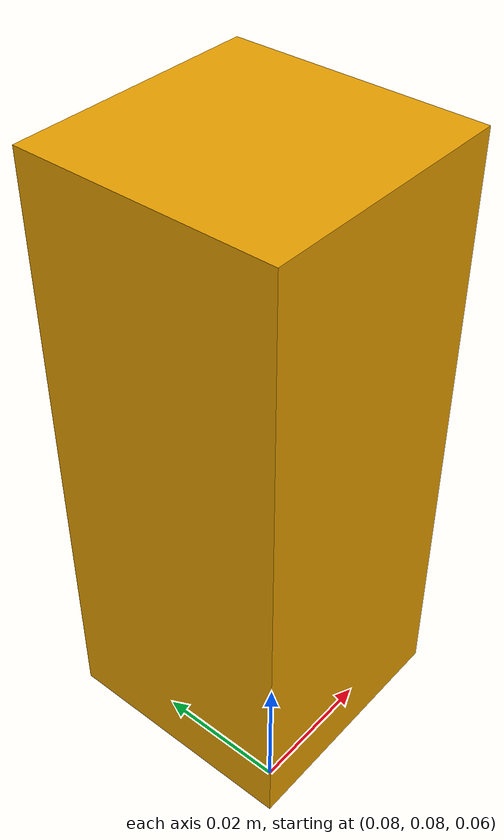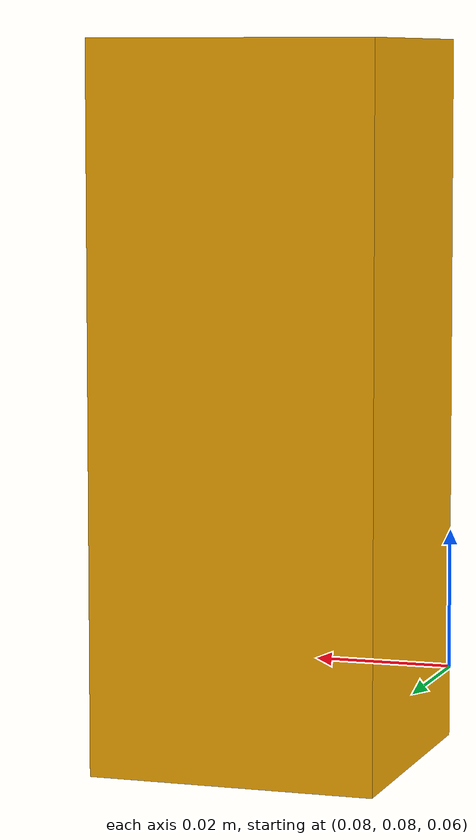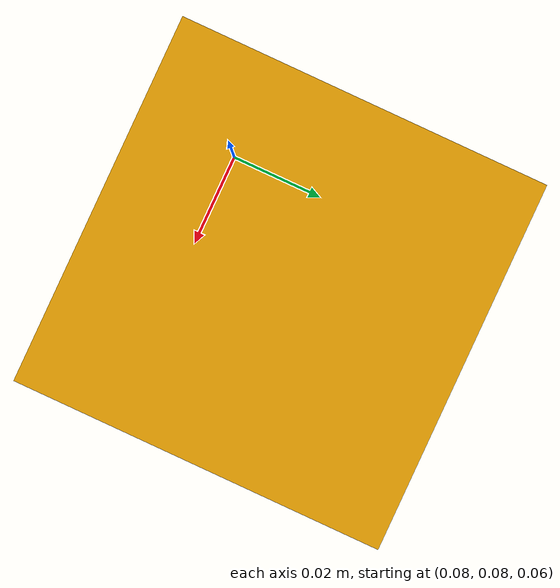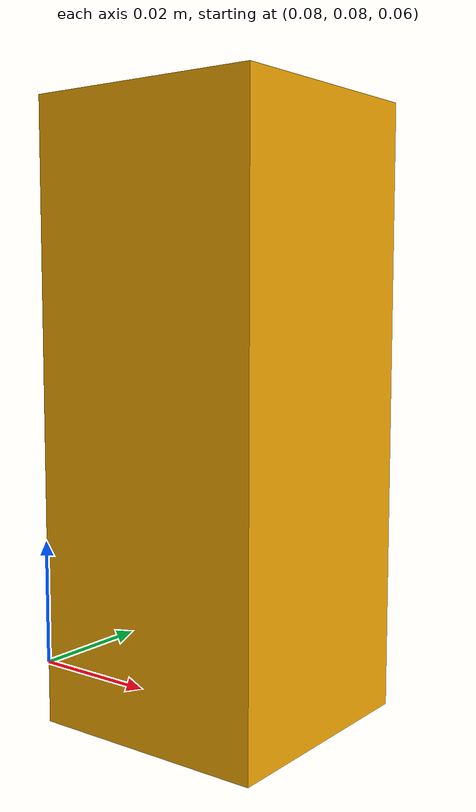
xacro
<?xml version="1.0"?>
<robot xmlns:xacro="http://www.ros.org/wiki/xacro" name="jars">

    <xacro:arg name="jar_number" default="0"/>
    <xacro:arg name="jar_pos_x" default="0.1"/>
    <xacro:arg name="jar_pos_y" default="0.1"/>
    <xacro:arg name="jar_pos_z" default="0.1"/>

    <xacro:macro name="cylinder_inertial_matrix" params="m r h xyz">
        <inertial>
            <mass value="${m}" />
            <origin xyz="${xyz}"/>
            <inertia ixx="${m*(3*r*r+h*h)/12}" ixy = "0" ixz = "0"
                iyy="${m*(3*r*r+h*h)/12}" iyz = "0"
                izz="${m*r*r/2}" />
        </inertial>
    </xacro:macro>

    <xacro:macro name="non_uniform_box" params="m l w h xyz">
        <!-- Calculate mass distribution -->
        <xacro:property name="mass_bottom" value="${0.75 * m}"/>
        <xacro:property name="mass_top" value="${0.25 * m}"/>
        <xacro:property name="half_height" value="${h / 2.0}"/>
        <xacro:property name="bottom_height" value="${half_height}"/>
        <xacro:property name="top_height" value="${half_height}"/>
        <!-- Inertia calculations for bottom half -->
        <xacro:property name="Ixx_bottom" value="${(1/12.0) * mass_bottom * (w**2 + bottom_height**2)}"/>
        <xacro:property name="Iyy_bottom" value="${(1/12.0) * mass_bottom * (l**2 + bottom_height**2)}"/>
        <xacro:property name="Izz_bottom" value="${(1/12.0) * mass_bottom * (l**2 + w**2)}"/>
        <!-- Inertia calculations for top half -->
        <xacro:property name="Ixx_top" value="${(1/12.0) * mass_top * (w**2 + top_height**2)}"/>
        <xacro:property name="Iyy_top" value="${(1/12.0) * mass_top * (l**2 + top_height**2)}"/>
        <xacro:property name="Izz_top" value="${(1/12.0) * mass_top * (l**2 + w**2)}"/>
        <!-- Combine inertias -->
        <xacro:property name="Ixx" value="${Ixx_bottom + Ixx_top}"/>
        <xacro:property name="Iyy" value="${Iyy_bottom + Iyy_top}"/>
        <xacro:property name="Izz" value="${Izz_bottom + Izz_top}"/>
        <!-- Create box link with combined inertia -->
        <inertial>
                <mass value="${m}" />
                <origin xyz="${xyz}"/>
                <inertia ixx="${Ixx}" ixy = "0" ixz = "0"
                    iyy="${Iyy}" iyz= "0"
                    izz="${Izz}" />
        </inertial>
    </xacro:macro>

    <xacro:macro name="Box_inertial_matrix" params="m l w h xyz">
       <inertial>
               <mass value="${m}" />
               <origin xyz="${xyz}"/>
               <inertia ixx="${m*(h*h + l*l)/12}" ixy = "0" ixz = "0"
                   iyy="${m*(w*w + l*l)/12}" iyz= "0"
                   izz="${m*(w*w + h*h)/12}" />
       </inertial>
    </xacro:macro>

    <xacro:macro name="one_jar" params="prefix:=jar1 xyz">
        <link name="${prefix}">
            <visual>
                <origin xyz="${xyz}" rpy="0 0 0"/>
                <geometry>
                    <box size="0.04 0.04 0.1"/>
                </geometry>
            </visual>
            <collision>
                <origin xyz="${xyz}" rpy="0 0 0"/>
                <geometry>
                    <box size="0.04 0.04 0.1"/>
                </geometry>
                <surface>
                    <friction>
                    <ode>
                        <mu>0.11</mu>
                        <mu2>0.11</mu2>
                    </ode>
                    </friction>
                </surface>
            </collision>

            <xacro:non_uniform_box m="0.3" l="0.04" w="0.04" h="0.1" xyz="${xyz}"/>
        </link>
    </xacro:macro>

    <xacro:one_jar prefix="jar$(arg jar_number)" xyz="$(arg jar_pos_x) $(arg jar_pos_y) $(arg jar_pos_z)"/>
</robot>
